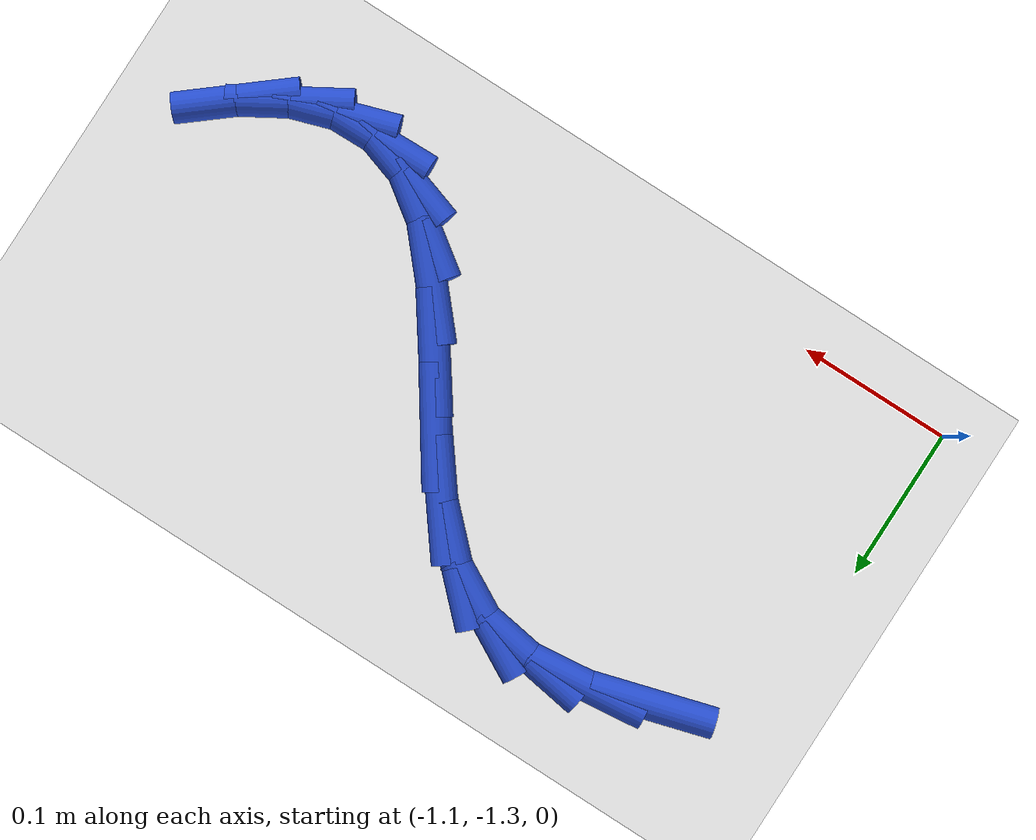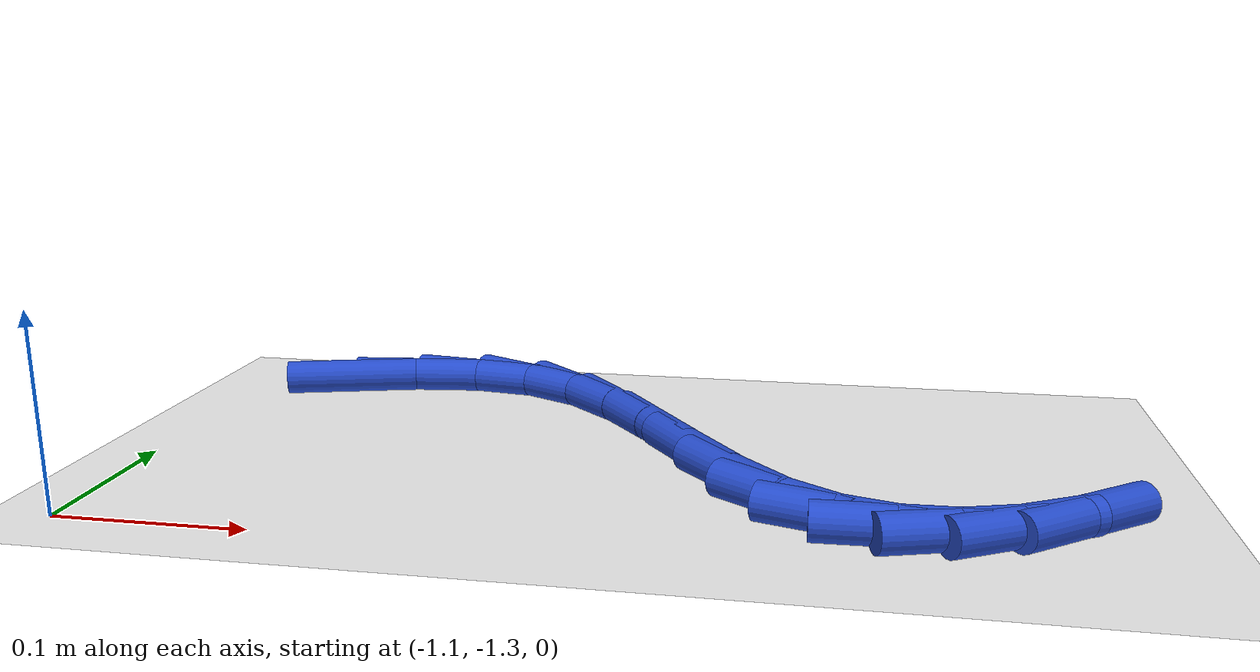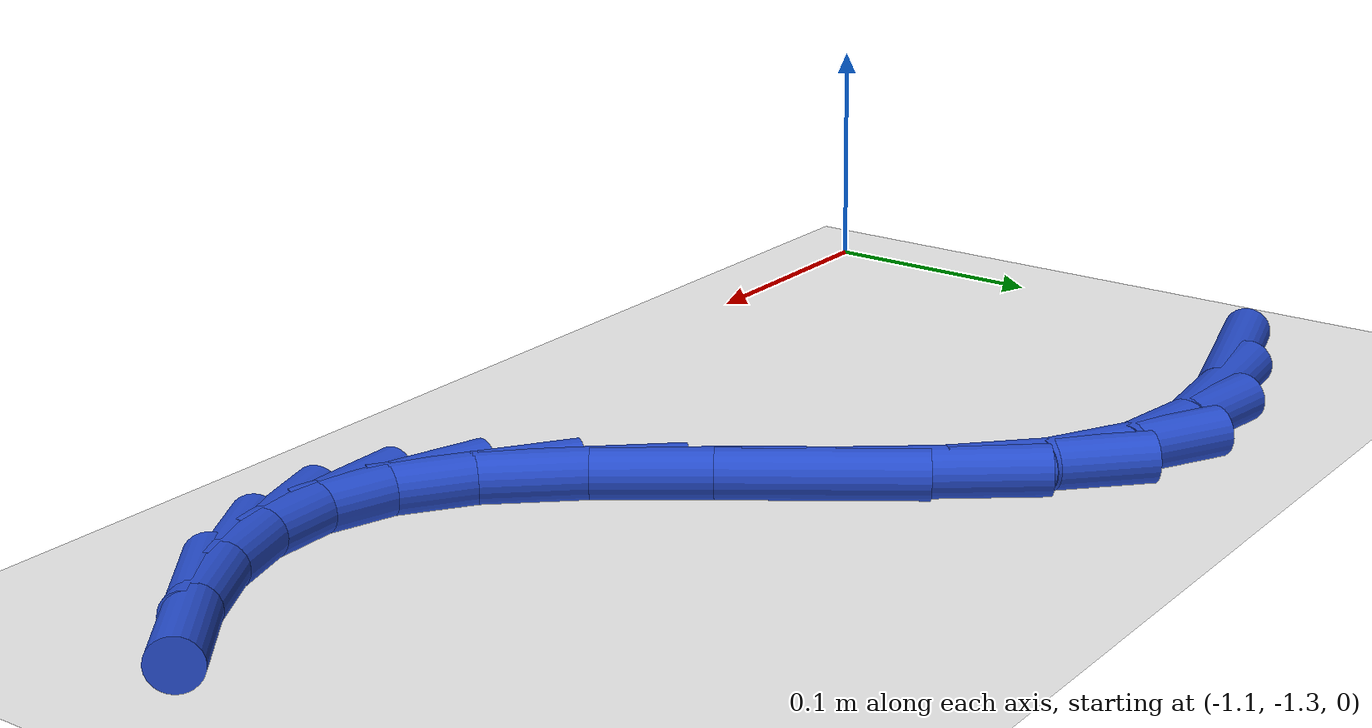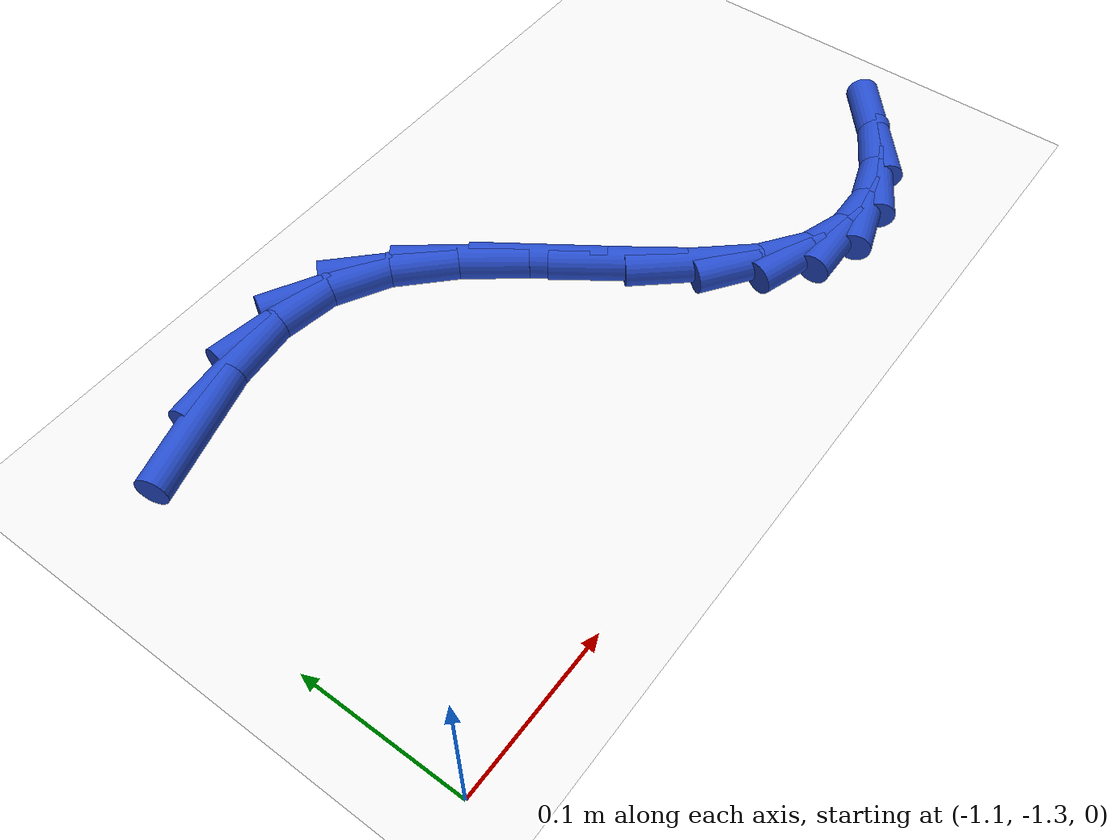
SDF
<sdf version="1.6">
 <world name="default">
  <model name="ground_plane">
   <static>1</static>
   <link name="link">
    <collision name="collision">
     <geometry><plane><normal>0 0 1</normal><size>100 100</size></plane></geometry>
     <surface><friction><ode><mu>100</mu><mu2>50</mu2></ode></friction></surface>
    </collision>
    <visual name="visual">
     <cast_shadows>0</cast_shadows>
     <geometry><plane><normal>0 0 1</normal><size>100 100</size></plane></geometry>
     <material>
      <script><uri>file://media/materials/scripts/gazebo.material</uri><name>Gazebo/WhiteGlow</name></script>
     </material>
    </visual>
   </link>
  </model>
  <model name="line">
   <link name="link_136">
    <pose>-1.0371857240363491 -1.0641521464877304 0.01 0 1.57 0.2838208709025175</pose>
    <collision name="collision">
     <geometry><cylinder><radius>0.01</radius><length>0.08</length></cylinder></geometry>
    </collision>
    <visual name="visual">
     <material>
      <script><name>Gazebo/Blue</name><uri>file://media/materials/scripts/gazebo.material</uri></script>
     </material>
     <geometry><cylinder><radius>0.01</radius><length>0.08</length></cylinder></geometry>
    </visual>
   </link>
   <link name="link_137">
    <pose>-0.9967201692780531 -1.0523485179566054 0.01 0 1.57 0.11375699170380489</pose>
    <collision name="collision">
     <geometry><cylinder><radius>0.01</radius><length>0.08</length></cylinder></geometry>
    </collision>
    <visual name="visual">
     <material>
      <script><name>Gazebo/Blue</name><uri>file://media/materials/scripts/gazebo.material</uri></script>
     </material>
     <geometry><cylinder><radius>0.01</radius><length>0.08</length></cylinder></geometry>
    </visual>
   </link>
   <link name="link_138">
    <pose>-0.9584068743447982 -1.0479712147523328 0.01 0 1.57 -0.15244592265588655</pose>
    <collision name="collision">
     <geometry><cylinder><radius>0.01</radius><length>0.08</length></cylinder></geometry>
    </collision>
    <visual name="visual">
     <material>
      <script><name>Gazebo/Blue</name><uri>file://media/materials/scripts/gazebo.material</uri></script>
     </material>
     <geometry><cylinder><radius>0.01</radius><length>0.08</length></cylinder></geometry>
    </visual>
   </link>
   <link name="link_139">
    <pose>-0.9227434337194321 -1.0534504723134028 0.01 0 1.57 -0.49683828615931774</pose>
    <collision name="collision">
     <geometry><cylinder><radius>0.01</radius><length>0.08</length></cylinder></geometry>
    </collision>
    <visual name="visual">
     <material>
      <script><name>Gazebo/Blue</name><uri>file://media/materials/scripts/gazebo.material</uri></script>
     </material>
     <geometry><cylinder><radius>0.01</radius><length>0.08</length></cylinder></geometry>
    </visual>
   </link>
   <link name="link_140">
    <pose>-0.8902047574765004 -1.0710930805009493 0.01 0 1.57 -0.774142884706257</pose>
    <collision name="collision">
     <geometry><cylinder><radius>0.01</radius><length>0.08</length></cylinder></geometry>
    </collision>
    <visual name="visual">
     <material>
      <script><name>Gazebo/Blue</name><uri>file://media/materials/scripts/gazebo.material</uri></script>
     </material>
     <geometry><cylinder><radius>0.01</radius><length>0.08</length></cylinder></geometry>
    </visual>
   </link>
   <link name="link_141">
    <pose>-0.8606710221199544 -1.099969367020529 0.01 0 1.57 -0.9182671704011861</pose>
    <collision name="collision">
     <geometry><cylinder><radius>0.01</radius><length>0.08</length></cylinder></geometry>
    </collision>
    <visual name="visual">
     <material>
      <script><name>Gazebo/Blue</name><uri>file://media/materials/scripts/gazebo.material</uri></script>
     </material>
     <geometry><cylinder><radius>0.01</radius><length>0.08</length></cylinder></geometry>
    </visual>
   </link>
   <link name="link_142">
    <pose>-0.833384049618395 -1.1356758178481348 0.01 0 1.57 -0.9733391074285446</pose>
    <collision name="collision">
     <geometry><cylinder><radius>0.01</radius><length>0.08</length></cylinder></geometry>
    </collision>
    <visual name="visual">
     <material>
      <script><name>Gazebo/Blue</name><uri>file://media/materials/scripts/gazebo.material</uri></script>
     </material>
     <geometry><cylinder><radius>0.01</radius><length>0.08</length></cylinder></geometry>
    </visual>
   </link>
   <link name="link_143">
    <pose>-0.8075542396356171 -1.1736379228946676 0.01 0 1.57 -0.9560901726966763</pose>
    <collision name="collision">
     <geometry><cylinder><radius>0.01</radius><length>0.08</length></cylinder></geometry>
    </collision>
    <visual name="visual">
     <material>
      <script><name>Gazebo/Blue</name><uri>file://media/materials/scripts/gazebo.material</uri></script>
     </material>
     <geometry><cylinder><radius>0.01</radius><length>0.08</length></cylinder></geometry>
    </visual>
   </link>
   <link name="link_144">
    <pose>-0.7823919918354145 -1.2092811720710313 0.01 0 1.57 -0.8494888670056947</pose>
    <collision name="collision">
     <geometry><cylinder><radius>0.01</radius><length>0.08</length></cylinder></geometry>
    </collision>
    <visual name="visual">
     <material>
      <script><name>Gazebo/Blue</name><uri>file://media/materials/scripts/gazebo.material</uri></script>
     </material>
     <geometry><cylinder><radius>0.01</radius><length>0.08</length></cylinder></geometry>
    </visual>
   </link>
   <link name="link_145">
    <pose>-0.7571080360865651 -1.2380330735638247 0.01 0 1.57 -0.6204644761850764</pose>
    <collision name="collision">
     <geometry><cylinder><radius>0.01</radius><length>0.08</length></cylinder></geometry>
    </collision>
    <visual name="visual">
     <material>
      <script><name>Gazebo/Blue</name><uri>file://media/materials/scripts/gazebo.material</uri></script>
     </material>
     <geometry><cylinder><radius>0.01</radius><length>0.08</length></cylinder></geometry>
    </visual>
   </link>
   <link name="link_146">
    <pose>-0.7311227335816771 -1.256602442104529 0.01 0 1.57 -0.31064689034353354</pose>
    <collision name="collision">
     <geometry><cylinder><radius>0.01</radius><length>0.08</length></cylinder></geometry>
    </collision>
    <visual name="visual">
     <material>
      <script><name>Gazebo/Blue</name><uri>file://media/materials/scripts/gazebo.material</uri></script>
     </material>
     <geometry><cylinder><radius>0.01</radius><length>0.08</length></cylinder></geometry>
    </visual>
   </link>
   <link name="link_147">
    <pose>-0.7044250468545383 -1.2651734920288598 0.01 0 1.57 0.024129542402720052</pose>
    <collision name="collision">
     <geometry><cylinder><radius>0.01</radius><length>0.08</length></cylinder></geometry>
    </collision>
    <visual name="visual">
     <material>
      <script><name>Gazebo/Blue</name><uri>file://media/materials/scripts/gazebo.material</uri></script>
     </material>
     <geometry><cylinder><radius>0.01</radius><length>0.08</length></cylinder></geometry>
    </visual>
   </link>
   <link name="link_148">
    <pose>-0.6770994150750231 -1.2645140090418678 0.01 0 1.57 0.3163321989716677</pose>
    <collision name="collision">
     <geometry><cylinder><radius>0.01</radius><length>0.08</length></cylinder></geometry>
    </collision>
    <visual name="visual">
     <material>
      <script><name>Gazebo/Blue</name><uri>file://media/materials/scripts/gazebo.material</uri></script>
     </material>
     <geometry><cylinder><radius>0.01</radius><length>0.08</length></cylinder></geometry>
    </visual>
   </link>
   <link name="link_149">
    <pose>-0.6492302774130092 -1.2553917788486064 0.01 0 1.57 0.5357412976230744</pose>
    <collision name="collision">
     <geometry><cylinder><radius>0.01</radius><length>0.08</length></cylinder></geometry>
    </collision>
    <visual name="visual">
     <material>
      <script><name>Gazebo/Blue</name><uri>file://media/materials/scripts/gazebo.material</uri></script>
     </material>
     <geometry><cylinder><radius>0.01</radius><length>0.08</length></cylinder></geometry>
    </visual>
   </link>
   <link name="link_150">
    <pose>-0.6209020730383713 -1.2385745871541274 0.01 0 1.57 0.691136315899016</pose>
    <collision name="collision">
     <geometry><cylinder><radius>0.01</radius><length>0.08</length></cylinder></geometry>
    </collision>
    <visual name="visual">
     <material>
      <script><name>Gazebo/Blue</name><uri>file://media/materials/scripts/gazebo.material</uri></script>
     </material>
     <geometry><cylinder><radius>0.01</radius><length>0.08</length></cylinder></geometry>
    </visual>
   </link>
  </model>
 </world>
</sdf>
